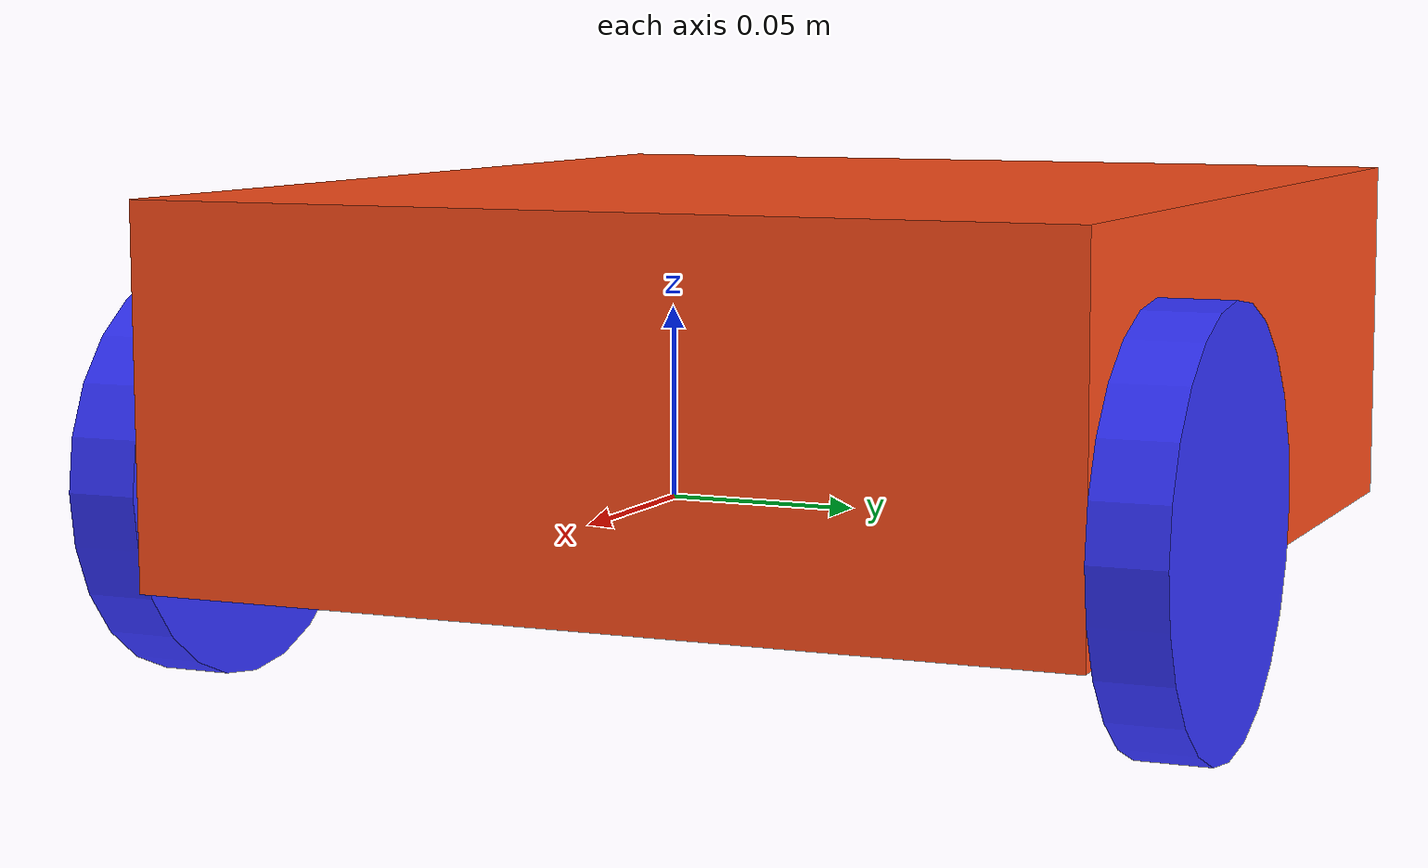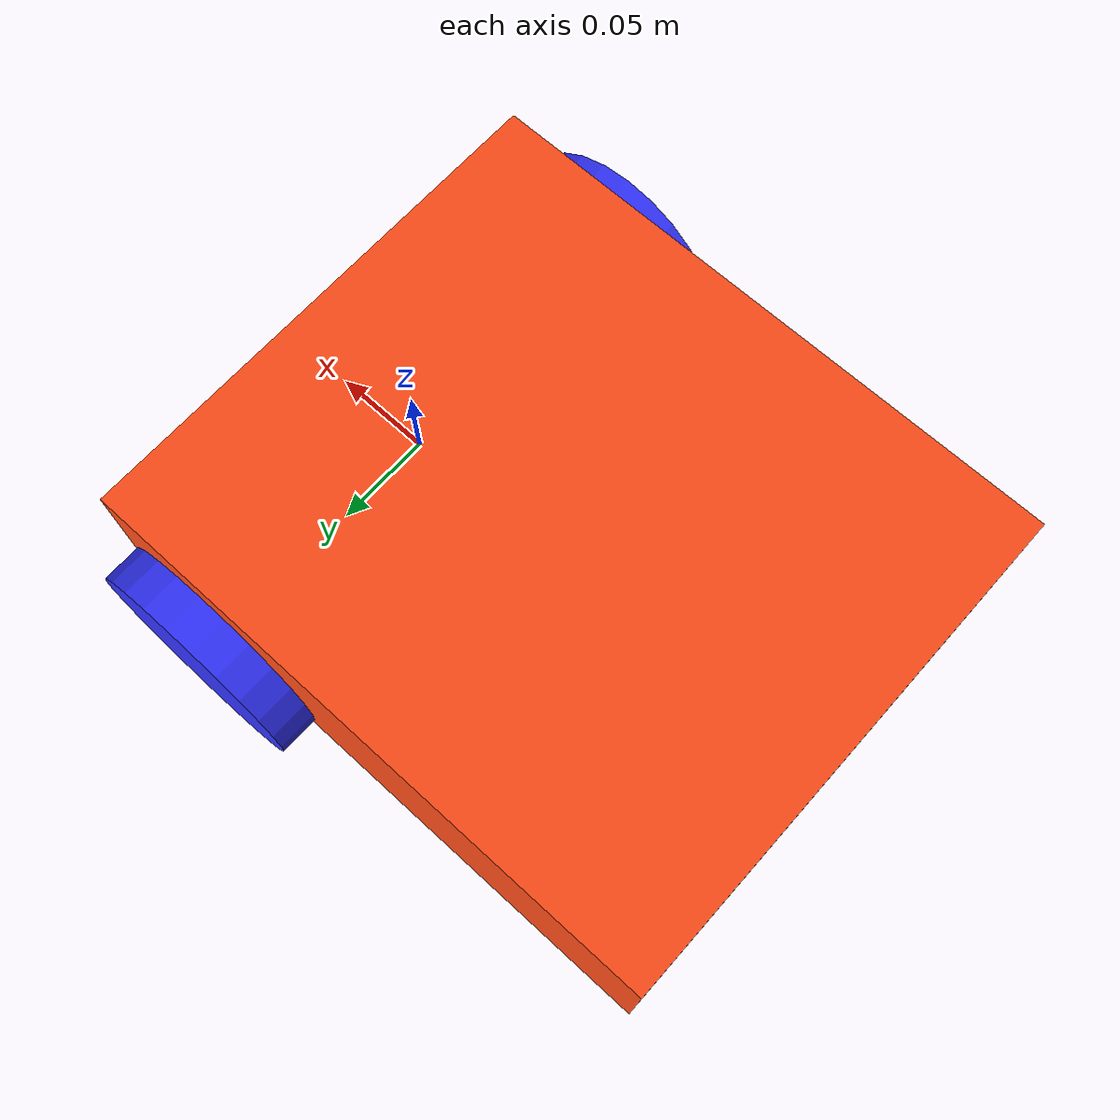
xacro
<?xml version="1.0"?>
<robot xmlns:xacro="http://www.ros.org/wiki/xacro" >

    <xacro:include filename="inertial_macros.xacro"/>

    <xacro:property name="chassis_length" value="0.305"/>
    <xacro:property name="chassis_width" value="0.260"/>
    <xacro:property name="chassis_height" value="0.104"/>
    <xacro:property name="chassis_mass" value="1.0"/>
    <xacro:property name="wheel_radius" value="0.057"/>
    <xacro:property name="wheel_thickness" value="0.020"/>
    <xacro:property name="wheel_mass" value="0.05"/>
    <xacro:property name="wheel_offset_x" value="0.250"/>
    <xacro:property name="wheel_offset_y" value="0.140"/>
    <xacro:property name="wheel_offset_z" value="0.026"/>
    <xacro:property name="caster_wheel_radius" value="0.030"/>
    <xacro:property name="caster_wheel_mass" value="0.05"/>
    <xacro:property name="caster_wheel_offset_x" value="0.030"/>
    <xacro:property name="caster_wheel_offset_y" value="0.095"/>
    <xacro:property name="caster_wheel_offset_z" value="0"/>

    <material name="white">
        <color rgba="1 1 1 1" />
    </material>

    <material name="orange">
        <color rgba="1 0.3 0.1 1"/>
    </material>

    <material name="blue">
        <color rgba="0.2 0.2 1 1"/>
    </material>

    <material name="black">
        <color rgba="0 0 0 1"/>
    </material>

    <material name="red">
        <color rgba="1 0 0 1"/>
    </material>

    <!-- BASE LINK -->

    <link name="base_link">

    </link>

    <!-- BASE_FOOTPRINT LINK -->

    <joint name="base_footprint_joint" type="fixed">
        <parent link="base_link"/>
        <child link="base_footprint"/>
        <origin xyz="0 0 1" rpy="0 0 0"/>
    </joint>

    <link name="base_footprint">
    </link>

    <!-- CHASSIS LINK -->

    <joint name="chassis_joint" type="fixed">
        <parent link="base_link"/>
        <child link="chassis"/>
        <origin xyz="${-wheel_offset_x} 0 ${-wheel_offset_z}"/>
    </joint>

    <link name="chassis">
        <visual>
            <origin xyz="${chassis_length/2} 0 ${chassis_height/2}"/>
            <geometry>
                <box size="${chassis_length} ${chassis_width} ${chassis_height}"/>
            </geometry>
            <material name="orange"/>
        </visual>
        <collision>
            <origin xyz="${chassis_length/2} 0 ${chassis_height/2}"/>
            <geometry>
                <box size="${chassis_length} ${chassis_width} ${chassis_height}"/>
            </geometry>
        </collision>
        <xacro:inertial_box mass="0.5" x="${chassis_length}" y="${chassis_width}" z="${chassis_height}">
            <origin xyz="${chassis_length/2} 0 ${chassis_height/2}" rpy="0 0 0"/>
        </xacro:inertial_box>
    </link>

    <gazebo reference="chassis">
        <material>Gazebo/Orange</material>
    </gazebo>

    <!-- LEFT WHEEL LINK -->

    <joint name="left_wheel_joint" type="continuous">
        <parent link="base_link"/>
        <child link="left_wheel"/>
        <origin xyz="0 ${wheel_offset_y} 0" rpy="-${pi/2} 0 0" />
        <axis xyz="0 0 1"/>
    </joint>

    <link name="left_wheel">
        <visual>
            <geometry>
                <cylinder radius="${wheel_radius}" length="${wheel_thickness}"/>
            </geometry>
            <material name="blue"/>
        </visual>
        <collision>
            <geometry>
                <sphere radius="${wheel_radius}"/>
            </geometry>
        </collision>
        <xacro:inertial_cylinder mass="${wheel_mass}" length="${wheel_thickness}" radius="${wheel_radius}">
            <origin xyz="0 0 0" rpy="0 0 0"/>
        </xacro:inertial_cylinder>
    </link>

    <gazebo reference="left_wheel">
        <material>Gazebo/Blue</material>
        <mu1 value="1.0"/>
        <mu2 value="1.0"/>
    </gazebo>

    <!-- RIGHT WHEEL LINK -->

    <joint name="right_wheel_joint" type="continuous">
        <parent link="base_link"/>
        <child link="right_wheel"/>
        <origin xyz="0 ${-wheel_offset_y} 0" rpy="${pi/2} 0 0" />
        <axis xyz="0 0 -1"/>
    </joint>

    <link name="right_wheel">
        <visual>
            <geometry>
                <cylinder radius="${wheel_radius}" length="${wheel_thickness}"/>
            </geometry>
            <material name="blue"/>
        </visual>
        <collision>
            <geometry>
                <sphere radius="${wheel_radius}"/>
            </geometry>
        </collision>
        <xacro:inertial_cylinder mass="${wheel_mass}" length="${wheel_thickness}" radius="${wheel_radius}">
            <origin xyz="0 0 0" rpy="0 0 0"/>
        </xacro:inertial_cylinder>
    </link>

    <gazebo reference="right_wheel">
        <material>Gazebo/Blue</material>
        <mu1 value="1.0"/>
        <mu2 value="1.0"/>
    </gazebo>

    <!-- CASTER WHEEL LINK -->

    <joint name="caster_wheel_joint" type="fixed">
        <parent link="chassis"/>
        <child link="caster_wheel"/>
        <origin xyz="${caster_wheel_offset_x} 0 ${caster_wheel_offset_z}"/>
    </joint>

    <link name="caster_wheel">
        <visual>
            <geometry>
                <sphere radius="${caster_wheel_radius}"/>
            </geometry>
            <material name="white"/>
        </visual>
        <collision>
            <geometry>
                <sphere radius="${caster_wheel_radius}"/>
            </geometry>
        </collision>
        <xacro:inertial_sphere mass="${caster_wheel_mass}" radius="${caster_wheel_radius}">
            <origin xyz="0 0 0" rpy="0 0 0"/>
        </xacro:inertial_sphere>
    </link>

    <!-- IMU LINK -->

    <joint name="imu_joint" type="fixed">
        <parent link="base_link"/>
        <child link="imu_link"/>
        <origin xyz="0.0 0 0.068" rpy="0 0 0"/>
    </joint>

    <link name="imu_link"/>

    <!-- GPS LINK -->

    <joint name="gps_joint" type="fixed">
        <parent link="base_link"/>
        <child link="gps_link"/>
        <origin xyz="0 0 0" rpy="0 0 0"/>
     </joint>

     <link name="gps_link"/>

    <gazebo reference="caster_wheel">
        <material>Gazebo/White</material>
        <mu1 value="0.01"/>
        <mu2 value="0.01"/>
    </gazebo>

</robot>
